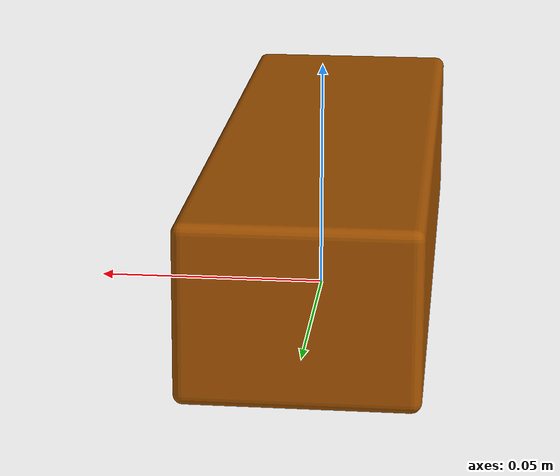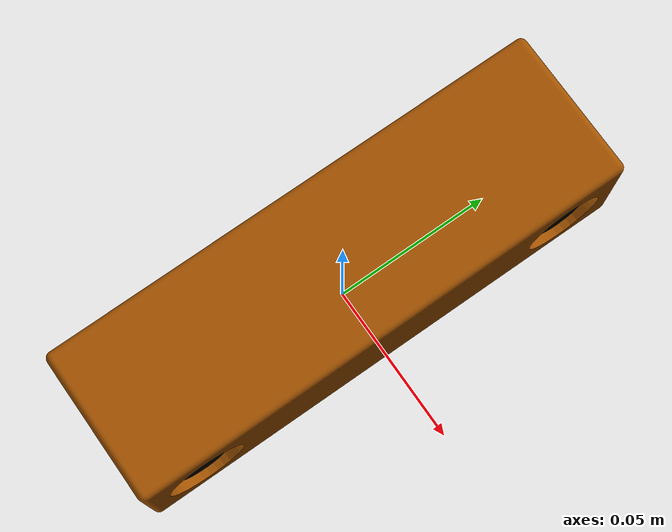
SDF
<?xml version="1.0" ?>
<sdf version="1.5">
 <model name="bumblebee2_dummy">
      <link name="link">
	<pose>0 0 0.018 0 0 0</pose>
	<inertial>
	  <mass>0.342</mass>
	   <inertia>
	     <ixx>0.000739430</ixx>
	     <iyy>0.000099893</iyy>
	     <izz>0.000765450</izz>
    	     <ixy>0</ixy>
	     <ixz>0</ixz>
	     <iyz>0</iyz>
	   </inertia>
	</inertial>
	<collision name="body">
	  <geometry>
	    <box>
	      <size> 0.047000 0.157000 0.036000</size>
	    </box>
	  </geometry>
	</collision>
	<visual name="bodyMesh">
	<pose>0 0 0 -1.57 0 -1.57</pose>
	  <geometry>
	  <mesh>
	    <uri>model://bumblebee2_dummy/meshes/bumblebee2.dae</uri>

	  </mesh>
	  </geometry>
	</visual>
      </link>
 </model>
</sdf>
